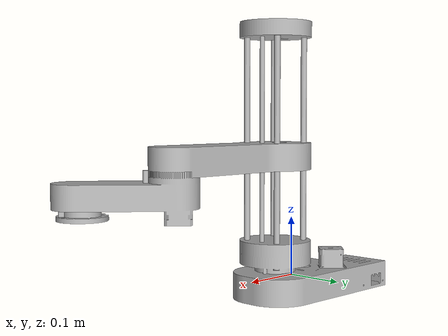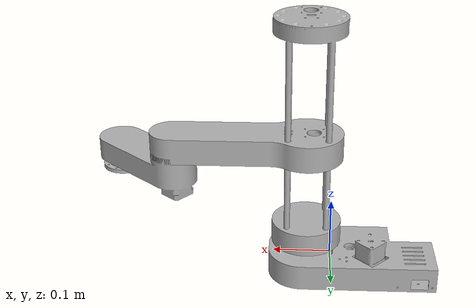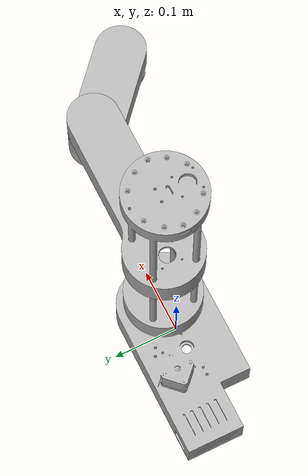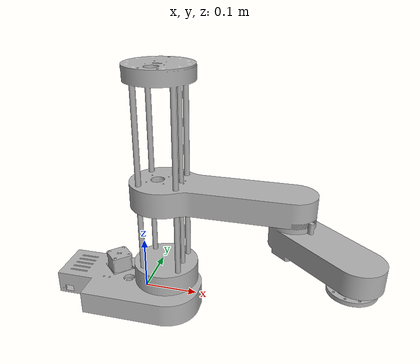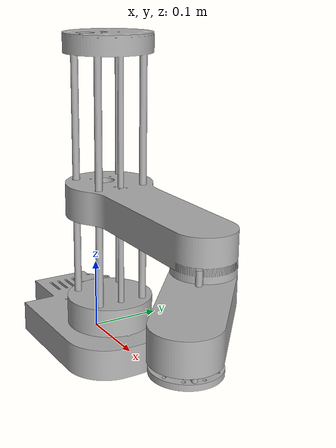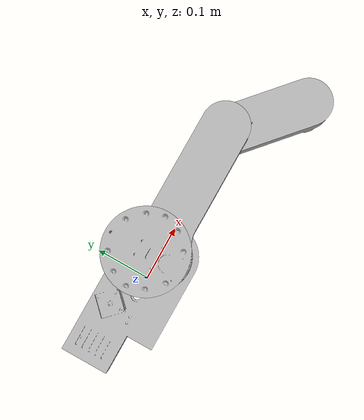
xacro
<?xml version="1.0" ?>
<robot name="scara" xmlns:xacro="http://www.ros.org/wiki/xacro">

<xacro:include filename="materials.xacro"/>

<link name="base_link">
  <inertial>
    <origin xyz="-0.032360929892306156 -0.03817985577112359 -0.027455736774146224" rpy="0 0 0"/>
    <mass value="5.219237339977411"/>
    <inertia ixx="0.011284" iyy="0.032378" izz="0.04101" ixy="0.002711" iyz="-0.000178" ixz="-0.000376"/>
  </inertial>
  <visual>
    <origin xyz="0 0 0" rpy="1.5708 0 0"/>
    <geometry>
      <mesh filename="package://scara_description/meshes/base_link.stl" scale="0.001 0.001 0.001"/>
    </geometry>
    <material name="silver"/>
  </visual>
  <collision>
    <origin xyz="0 0 0" rpy="1.5708 0 0"/>
    <geometry>
      <mesh filename="package://scara_description/meshes/base_link.stl" scale="0.001 0.001 0.001"/>
    </geometry>
  </collision>
</link>

<link name="arm_link_1">
  <inertial>
    <origin xyz="0.061652068268010854 4.958390842194765e-05 -0.018720530189430318" rpy="0 0 0"/>
    <mass value="3.3361153817528812"/>
    <inertia ixx="0.003823" iyy="0.028454" izz="0.03056" ixy="-1e-06" iyz="0.0" ixz="0.001281"/>
  </inertial>
  <visual>
    <origin xyz="-0.0755 0.04513 -0.202307" rpy="1.5708 0 0"/>
    <geometry>
      <mesh filename="package://scara_description/meshes/arm_link_1.stl" scale="0.001 0.001 0.001"/>
    </geometry>
    <material name="silver"/>
  </visual>
  <collision>
    <origin xyz="-0.0755 0.04513 -0.202307" rpy="1.5708 0 0"/>
    <geometry>
      <mesh filename="package://scara_description/meshes/arm_link_1.stl" scale="0.001 0.001 0.001"/>
    </geometry>
  </collision>
</link>

<link name="forearm_link_1">
  <inertial>
    <origin xyz="0.039237741083103794 0.13667447764874746 0.18305597823939246" rpy="0 0 0"/>
    <mass value="2.839268182842396"/>
    <inertia ixx="0.006929" iyy="0.008158" izz="0.012889" ixy="0.004912" iyz="4e-05" ixz="-4.5e-05"/>
  </inertial>
  <visual>
    <origin xyz="-0.2705 0.216436 0.050022" rpy="1.5708 0 0"/>
    <geometry>
      <mesh filename="package://scara_description/meshes/forearm_link_1.stl" scale="0.001 0.001 0.001"/>
    </geometry>
    <material name="silver"/>
  </visual>
  <collision>
    <origin xyz="-0.2705 0.216436 0.050022" rpy="1.5708 0 0"/>
    <geometry>
      <mesh filename="package://scara_description/meshes/forearm_link_1.stl" scale="0.001 0.001 0.001"/>
    </geometry>
  </collision>
</link>

<link name="wrist_link_1">
  <inertial>
    <origin xyz="0.0007189203809285227 0.02272519446366081 0.2331044987307334" rpy="0 0 0"/>
    <mass value="0.3289080564819458"/>
    <inertia ixx="0.000118" iyy="0.000117" izz="0.000215" ixy="-0.0" iyz="0.0" ixz="-0.0"/>
  </inertial>
  <visual>
    <origin xyz="-0.372837 0.158436 0.130351" rpy="1.5708 0 0"/>
    <geometry>
      <mesh filename="package://scara_description/meshes/wrist_link_1.stl" scale="0.001 0.001 0.001"/>
    </geometry>
    <material name="silver"/>
  </visual>
  <collision>
    <origin xyz="-0.372837 0.158436 0.130351" rpy="1.5708 0 0"/>
    <geometry>
      <mesh filename="package://scara_description/meshes/wrist_link_1.stl" scale="0.001 0.001 0.001"/>
    </geometry>
  </collision>
</link>

<link name="z_link_1">
  <inertial>
    <origin xyz="0.0010129123085257999 0.00044657636701683767 0.17837058457639143" rpy="0 0 0"/>
    <mass value="4.1421291200821075"/>
    <inertia ixx="0.122256" iyy="0.122323" izz="0.008098" ixy="-1e-06" iyz="-0.000407" ixz="-0.000283"/>
  </inertial>
  <visual>
    <origin xyz="-0.0425 0.04513 0.016693" rpy="1.5708 0 0"/>
    <geometry>
      <mesh filename="package://scara_description/meshes/z_link_1.stl" scale="0.001 0.001 0.001"/>
    </geometry>
    <material name="silver"/>
  </visual>
  <collision>
    <origin xyz="-0.0425 0.04513 0.016693" rpy="1.5708 0 0"/>
    <geometry>
      <mesh filename="package://scara_description/meshes/z_link_1.stl" scale="0.001 0.001 0.001"/>
    </geometry>
  </collision>
</link>

<joint name="z_joint" type="prismatic">
  <origin xyz="0.033 0.0 0.219" rpy="0 0 0"/>
  <parent link="z_link_1"/>
  <child link="arm_link_1"/>
  <axis xyz="0.0 0.0 -1.0"/>
  <limit upper="0.118" lower="-0.13" effort="100" velocity="100"/>
</joint>

<joint name="elbow_joint" type="continuous">
  <origin xyz="0.195 -0.171306 -0.252329" rpy="0 0 0"/>
  <parent link="arm_link_1"/>
  <child link="forearm_link_1"/>
  <axis xyz="0.0 -0.0 1.0"/>
</joint>

<joint name="wrist_joint" type="revolute">
  <origin xyz="0.102337 0.058 -0.080329" rpy="0 0 0"/>
  <parent link="forearm_link_1"/>
  <child link="wrist_link_1"/>
  <axis xyz="0.0 -0.0 1.0"/>
  <limit upper="1.919862" lower="-2.617994" effort="100" velocity="100"/>
</joint>

<joint name="shoulder_joint" type="revolute">
  <origin xyz="0.0425 -0.04513 -0.016693" rpy="0 0 0"/>
  <parent link="base_link"/>
  <child link="z_link_1"/>
  <axis xyz="-0.0 -0.0 1.0"/>
  <limit upper="0.872665" lower="-4.101524" effort="100" velocity="100"/>
</joint>

</robot>

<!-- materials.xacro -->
<robot name="scara" xmlns:xacro="http://www.ros.org/wiki/xacro" >

<material name="silver">
  <color rgba="0.700 0.700 0.700 1.000"/>
</material>

</robot>
